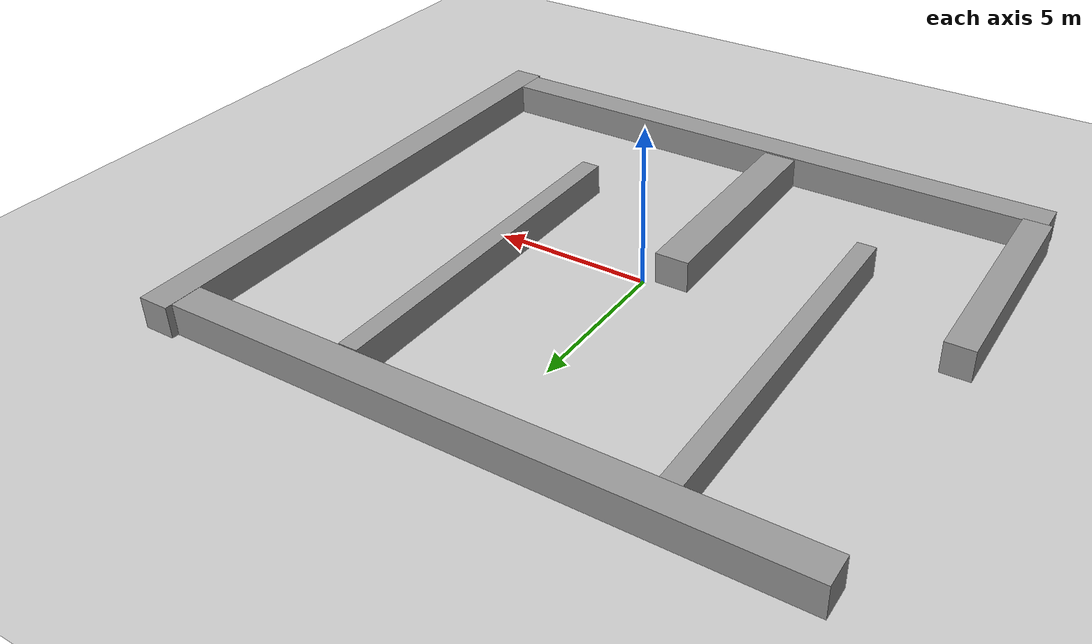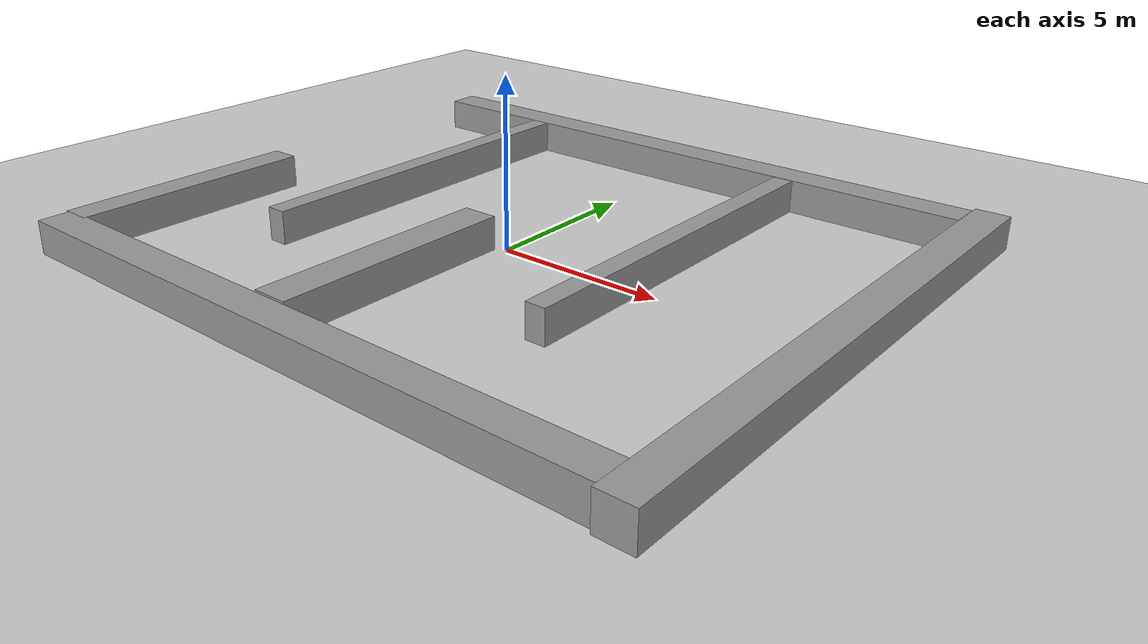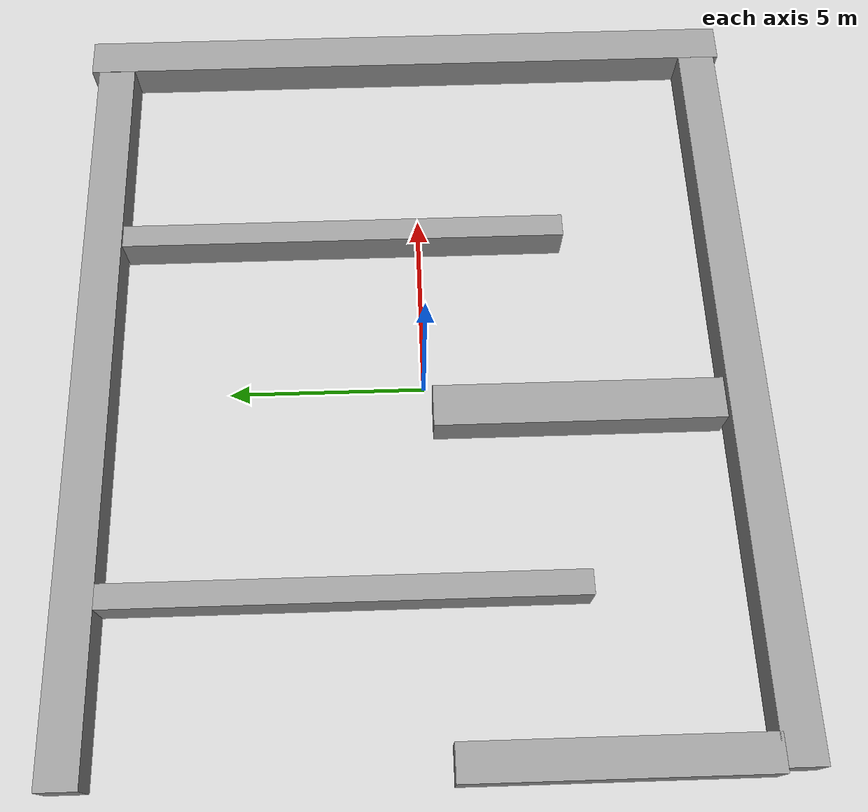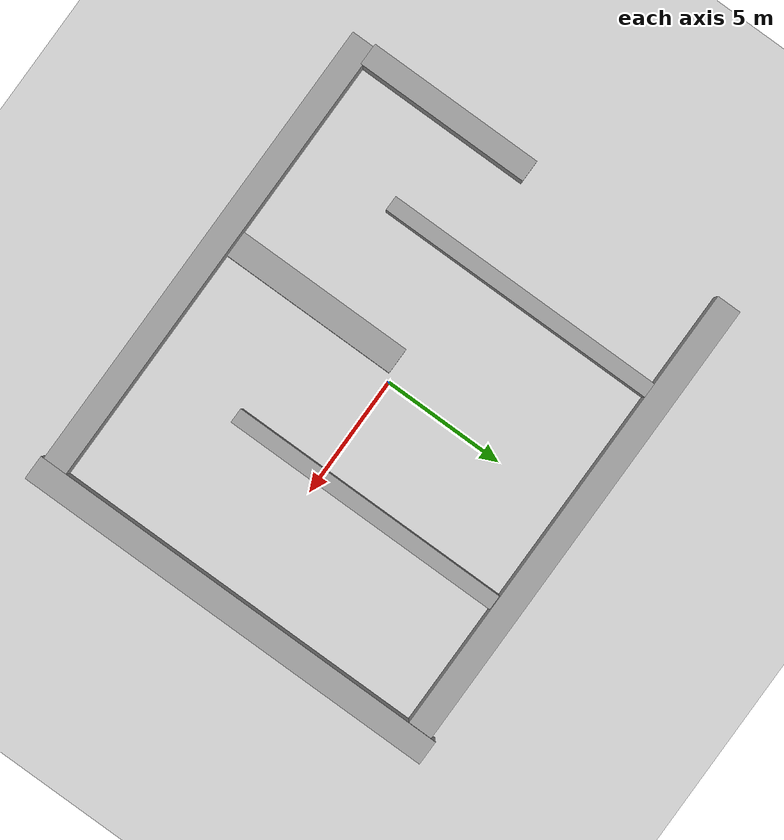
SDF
<sdf version="1.6">
 <world name="default">
  <light name="sun" type="directional">
   <pose>0 0 10 0 -0 0</pose>
   <diffuse>0.8 0.8 0.8 1</diffuse>
   <specular>0.1 0.1 0.1 1</specular>
   <attenuation>
    <range>1000</range>
    <constant>0.9</constant>
    <linear>0.01</linear>
    <quadratic>0.001</quadratic>
   </attenuation>
   <direction>-0.5 0.5 -1</direction>
  </light>
  <model name="ground_plane">
   <static>1</static>
   <link name="link">
    <collision name="collision">
     <geometry><plane><normal>0 0 1</normal><size>100 100</size></plane></geometry>
     <surface><friction><ode><mu>100</mu><mu2>50</mu2></ode></friction></surface>
    </collision>
    <visual name="visual">
     <cast_shadows>0</cast_shadows>
     <geometry><plane><normal>0 0 1</normal><size>100 100</size></plane></geometry>
     <material>
      <script><uri>file://media/materials/scripts/gazebo.material</uri><name>Gazebo/Grey</name></script>
     </material>
    </visual>
   </link>
  </model>
  <gravity>0 0 -9.8</gravity>
  <magnetic_field>6e-06 2.3e-05 -4.2e-05</magnetic_field>
  <atmosphere type="adiabatic"/>
  <physics name="default_physics" default="0" type="ode">
   <max_step_size>0.001</max_step_size>
   <real_time_factor>1</real_time_factor>
   <real_time_update_rate>1000</real_time_update_rate>
  </physics>
  <scene><ambient>0.4 0.4 0.4 1</ambient><background>0.7 0.7 0.7 1</background><shadows>1</shadows></scene>
  <spherical_coordinates>
   <surface_model>EARTH_WGS84</surface_model>
   <latitude_deg>0</latitude_deg>
   <longitude_deg>0</longitude_deg>
   <elevation>0</elevation>
   <heading_deg>0</heading_deg>
  </spherical_coordinates>
  <model name="wall_box_0_1">
   <link name="link">
    <pose>1.62881 -8.40741 3e-06 0 -0 0</pose>
    <inertial>
     <mass>19.2162</mass>
     <inertia><ixx>3.20271</ixx><ixy>0</ixy><ixz>0</ixz><iyy>592.925</iyy><iyz>0</iyz><izz>592.925</izz></inertia>
    </inertial>
    <visual name="visual">
     <geometry><box><size>19.2162 1 1</size></box></geometry>
     <material>
      <script><name>Gazebo/Grey</name><uri>file://media/materials/scripts/gazebo.material</uri></script>
      <ambient>0.3 0.3 0.3 1</ambient>
      <diffuse>0.7 0.7 0.7 1</diffuse>
      <specular>0.01 0.01 0.01 1</specular>
      <emissive>0 0 0 1</emissive>
     </material>
    </visual>
    <collision name="collision">
     <geometry><box><size>19.2162 1 1</size></box></geometry>
     <surface>
      <friction>
       <ode><mu>1</mu><mu2>1</mu2><fdir1>0 0 0</fdir1><slip1>0</slip1><slip2>0</slip2></ode>
       <torsional>
        <coefficient>1</coefficient>
        <patch_radius>0</patch_radius>
        <surface_radius>0</surface_radius>
        <use_patch_radius>1</use_patch_radius>
        <ode><slip>0</slip></ode>
       </torsional>
      </friction>
      <bounce><restitution_coefficient>0</restitution_coefficient><threshold>1e+06</threshold></bounce>
      <contact>
       <collide_without_contact>0</collide_without_contact>
       <collide_without_contact_bitmask>1</collide_without_contact_bitmask>
       <collide_bitmask>1</collide_bitmask>
       <ode>
        <soft_cfm>0</soft_cfm>
        <soft_erp>0.2</soft_erp>
        <kp>1e+13</kp>
        <kd>1</kd>
        <max_vel>0.01</max_vel>
        <min_depth>0</min_depth>
       </ode>
       <bullet>
        <split_impulse>1</split_impulse>
        <split_impulse_penetration_threshold>-0.01</split_impulse_penetration_threshold>
        <soft_cfm>0</soft_cfm>
        <soft_erp>0.2</soft_erp>
        <kp>1e+13</kp>
        <kd>1</kd>
       </bullet>
      </contact>
     </surface>
    </collision>
   </link>
   <link name="link_0">
    <pose>-7.64804 -4.34068 -3.2e-05 -1e-05 0 0</pose>
    <inertial>
     <mass>6.54361</mass>
     <inertia><ixx>29.6217</ixx><ixy>0</ixy><ixz>0</ixz><iyy>0.983213</iyy><iyz>0</iyz><izz>29.5143</izz></inertia>
    </inertial>
    <visual name="visual">
     <geometry><box><size>0.896119 7.30217 1</size></box></geometry>
     <material>
      <lighting>1</lighting>
      <script><uri>file://media/materials/scripts/gazebo.material</uri><name>Gazebo/Grey</name></script>
      <ambient>0.3 0.3 0.3 1</ambient>
      <diffuse>0.7 0.7 0.7 1</diffuse>
      <specular>0.01 0.01 0.01 1</specular>
      <emissive>0 0 0 1</emissive>
     </material>
    </visual>
    <collision name="collision">
     <geometry><box><size>0.896119 7.30217 1</size></box></geometry>
     <surface>
      <friction>
       <ode><mu>1</mu><mu2>1</mu2><fdir1>0 0 0</fdir1><slip1>0</slip1><slip2>0</slip2></ode>
       <torsional>
        <coefficient>1</coefficient>
        <patch_radius>0</patch_radius>
        <surface_radius>0</surface_radius>
        <use_patch_radius>1</use_patch_radius>
        <ode><slip>0</slip></ode>
       </torsional>
      </friction>
      <bounce><restitution_coefficient>0</restitution_coefficient><threshold>1e+06</threshold></bounce>
      <contact>
       <collide_without_contact>0</collide_without_contact>
       <collide_without_contact_bitmask>1</collide_without_contact_bitmask>
       <collide_bitmask>1</collide_bitmask>
       <ode>
        <soft_cfm>0</soft_cfm>
        <soft_erp>0.2</soft_erp>
        <kp>1e+13</kp>
        <kd>1</kd>
        <max_vel>0.01</max_vel>
        <min_depth>0</min_depth>
       </ode>
       <bullet>
        <split_impulse>1</split_impulse>
        <split_impulse_penetration_threshold>-0.01</split_impulse_penetration_threshold>
        <soft_cfm>0</soft_cfm>
        <soft_erp>0.2</soft_erp>
        <kp>1e+13</kp>
        <kd>1</kd>
       </bullet>
      </contact>
     </surface>
    </collision>
   </link>
   <link name="link_0_clone_2">
    <pose>0.798242 -4.17593 -6.8e-05 -2e-05 0 0</pose>
    <inertial>
     <mass>7.78347</mass>
     <inertia><ixx>35.2343</ixx><ixy>0</ixy><ixz>0</ixz><iyy>1.38558</iyy><iyz>0</iyz><izz>35.3226</izz></inertia>
    </inertial>
    <visual name="visual">
     <geometry><box><size>1.06591 7.30217 1</size></box></geometry>
     <material>
      <lighting>1</lighting>
      <script><uri>file://media/materials/scripts/gazebo.material</uri><name>Gazebo/Grey</name></script>
      <ambient>0.3 0.3 0.3 1</ambient>
      <diffuse>0.7 0.7 0.7 1</diffuse>
      <specular>0.01 0.01 0.01 1</specular>
      <emissive>0 0 0 1</emissive>
      <shader type="pixel"/>
     </material>
    </visual>
    <collision name="collision">
     <geometry><box><size>1.06591 7.30217 1</size></box></geometry>
     <surface>
      <friction>
       <ode><mu>1</mu><mu2>1</mu2><fdir1>0 0 0</fdir1><slip1>0</slip1><slip2>0</slip2></ode>
       <torsional>
        <coefficient>1</coefficient>
        <patch_radius>0</patch_radius>
        <surface_radius>0</surface_radius>
        <use_patch_radius>1</use_patch_radius>
        <ode><slip>0</slip></ode>
       </torsional>
      </friction>
      <bounce><restitution_coefficient>0</restitution_coefficient><threshold>1e+06</threshold></bounce>
      <contact>
       <collide_without_contact>0</collide_without_contact>
       <collide_without_contact_bitmask>1</collide_without_contact_bitmask>
       <collide_bitmask>1</collide_bitmask>
       <ode>
        <soft_cfm>0</soft_cfm>
        <soft_erp>0.2</soft_erp>
        <kp>1e+13</kp>
        <kd>1</kd>
        <max_vel>0.01</max_vel>
        <min_depth>0</min_depth>
       </ode>
       <bullet>
        <split_impulse>1</split_impulse>
        <split_impulse_penetration_threshold>-0.01</split_impulse_penetration_threshold>
        <soft_cfm>0</soft_cfm>
        <soft_erp>0.2</soft_erp>
        <kp>1e+13</kp>
        <kd>1</kd>
       </bullet>
      </contact>
     </surface>
    </collision>
   </link>
   <link name="link_1">
    <pose>11.7373 -0.140275 -7.3e-05 -1e-05 0 0</pose>
    <inertial>
     <mass>17.784</mass>
     <inertia><ixx>470.194</ixx><ixy>0</ixy><ixz>0</ixz><iyy>2.964</iyy><iyz>0</iyz><izz>470.194</izz></inertia>
    </inertial>
    <visual name="visual">
     <geometry><box><size>1 17.784 1</size></box></geometry>
     <material>
      <lighting>1</lighting>
      <script><uri>file://media/materials/scripts/gazebo.material</uri><name>Gazebo/Grey</name></script>
      <ambient>0.3 0.3 0.3 1</ambient>
      <diffuse>0.7 0.7 0.7 1</diffuse>
      <specular>0.01 0.01 0.01 1</specular>
      <emissive>0 0 0 1</emissive>
     </material>
    </visual>
    <collision name="collision">
     <geometry><box><size>1 17.784 1</size></box></geometry>
     <surface>
      <friction>
       <ode><mu>1</mu><mu2>1</mu2><fdir1>0 0 0</fdir1><slip1>0</slip1><slip2>0</slip2></ode>
       <torsional>
        <coefficient>1</coefficient>
        <patch_radius>0</patch_radius>
        <surface_radius>0</surface_radius>
        <use_patch_radius>1</use_patch_radius>
        <ode><slip>0</slip></ode>
       </torsional>
      </friction>
      <bounce><restitution_coefficient>0</restitution_coefficient><threshold>1e+06</threshold></bounce>
      <contact>
       <collide_without_contact>0</collide_without_contact>
       <collide_without_contact_bitmask>1</collide_without_contact_bitmask>
       <collide_bitmask>1</collide_bitmask>
       <ode>
        <soft_cfm>0</soft_cfm>
        <soft_erp>0.2</soft_erp>
        <kp>1e+13</kp>
        <kd>1</kd>
        <max_vel>0.01</max_vel>
        <min_depth>0</min_depth>
       </ode>
       <bullet>
        <split_impulse>1</split_impulse>
        <split_impulse_penetration_threshold>-0.01</split_impulse_penetration_threshold>
        <soft_cfm>0</soft_cfm>
        <soft_erp>0.2</soft_erp>
        <kp>1e+13</kp>
        <kd>1</kd>
       </bullet>
      </contact>
     </surface>
    </collision>
   </link>
   <link name="link_2">
    <pose>-3.73259 1.71366 -9.3e-05 -1e-05 0 0</pose>
    <inertial>
     <mass>7.12571</mass>
     <inertia><ixx>81.3871</ixx><ixy>0</ixy><ixz>0</ixz><iyy>0.81537</iyy><iyz>0</iyz><izz>81.0147</izz></inertia>
    </inertial>
    <visual name="visual">
     <geometry><box><size>0.610894 11.6644 1</size></box></geometry>
     <material>
      <lighting>1</lighting>
      <script><uri>file://media/materials/scripts/gazebo.material</uri><name>Gazebo/Grey</name></script>
      <ambient>0.3 0.3 0.3 1</ambient>
      <diffuse>0.7 0.7 0.7 1</diffuse>
      <specular>0.01 0.01 0.01 1</specular>
      <emissive>0 0 0 1</emissive>
     </material>
    </visual>
    <collision name="collision">
     <geometry><box><size>0.610894 11.6644 1</size></box></geometry>
     <surface>
      <friction>
       <ode><mu>1</mu><mu2>1</mu2><fdir1>0 0 0</fdir1><slip1>0</slip1><slip2>0</slip2></ode>
       <torsional>
        <coefficient>1</coefficient>
        <patch_radius>0</patch_radius>
        <surface_radius>0</surface_radius>
        <use_patch_radius>1</use_patch_radius>
        <ode><slip>0</slip></ode>
       </torsional>
      </friction>
      <bounce><restitution_coefficient>0</restitution_coefficient><threshold>1e+06</threshold></bounce>
      <contact>
       <collide_without_contact>0</collide_without_contact>
       <collide_without_contact_bitmask>1</collide_without_contact_bitmask>
       <collide_bitmask>1</collide_bitmask>
       <ode>
        <soft_cfm>0</soft_cfm>
        <soft_erp>0.2</soft_erp>
        <kp>1e+13</kp>
        <kd>1</kd>
        <max_vel>0.01</max_vel>
        <min_depth>0</min_depth>
       </ode>
       <bullet>
        <split_impulse>1</split_impulse>
        <split_impulse_penetration_threshold>-0.01</split_impulse_penetration_threshold>
        <soft_cfm>0</soft_cfm>
        <soft_erp>0.2</soft_erp>
        <kp>1e+13</kp>
        <kd>1</kd>
       </bullet>
      </contact>
     </surface>
    </collision>
   </link>
   <link name="link_2_clone_2">
    <pose>5.86168 1.68176 -0.000192 -2e-05 0 0</pose>
    <inertial>
     <mass>7.12579</mass>
     <inertia><ixx>81.388</ixx><ixy>0</ixy><ixz>0</ixz><iyy>0.815385</iyy><iyz>0</iyz><izz>81.0157</izz></inertia>
    </inertial>
    <visual name="visual">
     <geometry><box><size>0.610901 11.6644 1</size></box></geometry>
     <material>
      <lighting>1</lighting>
      <script><uri>file://media/materials/scripts/gazebo.material</uri><name>Gazebo/Grey</name></script>
      <ambient>0.3 0.3 0.3 1</ambient>
      <diffuse>0.7 0.7 0.7 1</diffuse>
      <specular>0.01 0.01 0.01 1</specular>
      <emissive>0 0 0 1</emissive>
      <shader type="vertex"><normal_map>__default__</normal_map></shader>
     </material>
    </visual>
    <collision name="collision">
     <geometry><box><size>0.610901 11.6644 1</size></box></geometry>
     <surface>
      <friction>
       <ode><mu>1</mu><mu2>1</mu2><fdir1>0 0 0</fdir1><slip1>0</slip1><slip2>0</slip2></ode>
       <torsional>
        <coefficient>1</coefficient>
        <patch_radius>0</patch_radius>
        <surface_radius>0</surface_radius>
        <use_patch_radius>1</use_patch_radius>
        <ode><slip>0</slip></ode>
       </torsional>
      </friction>
      <bounce><restitution_coefficient>0</restitution_coefficient><threshold>1e+06</threshold></bounce>
      <contact>
       <collide_without_contact>0</collide_without_contact>
       <collide_without_contact_bitmask>1</collide_without_contact_bitmask>
       <collide_bitmask>1</collide_bitmask>
       <ode>
        <soft_cfm>0</soft_cfm>
        <soft_erp>0.2</soft_erp>
        <kp>1e+13</kp>
        <kd>1</kd>
        <max_vel>0.01</max_vel>
        <min_depth>0</min_depth>
       </ode>
       <bullet>
        <split_impulse>1</split_impulse>
        <split_impulse_penetration_threshold>-0.01</split_impulse_penetration_threshold>
        <soft_cfm>0</soft_cfm>
        <soft_erp>0.2</soft_erp>
        <kp>1e+13</kp>
        <kd>1</kd>
       </bullet>
      </contact>
     </surface>
    </collision>
   </link>
   <link name="link_clone">
    <pose>1.62 8.0422 -0.000157 -1e-05 0 0</pose>
    <inertial>
     <mass>19.2162</mass>
     <inertia><ixx>3.20271</ixx><ixy>0</ixy><ixz>0</ixz><iyy>592.925</iyy><iyz>0</iyz><izz>592.925</izz></inertia>
    </inertial>
    <visual name="visual">
     <geometry><box><size>19.2162 1 1</size></box></geometry>
     <material>
      <script><name>Gazebo/Grey</name><uri>file://media/materials/scripts/gazebo.material</uri></script>
      <ambient>0.3 0.3 0.3 1</ambient>
      <diffuse>0.7 0.7 0.7 1</diffuse>
      <specular>0.01 0.01 0.01 1</specular>
      <emissive>0 0 0 1</emissive>
      <shader type="pixel"/>
     </material>
    </visual>
    <collision name="collision">
     <geometry><box><size>19.2162 1 1</size></box></geometry>
     <surface>
      <friction>
       <ode><mu>1</mu><mu2>1</mu2><fdir1>0 0 0</fdir1><slip1>0</slip1><slip2>0</slip2></ode>
       <torsional>
        <coefficient>1</coefficient>
        <patch_radius>0</patch_radius>
        <surface_radius>0</surface_radius>
        <use_patch_radius>1</use_patch_radius>
        <ode><slip>0</slip></ode>
       </torsional>
      </friction>
      <bounce><restitution_coefficient>0</restitution_coefficient><threshold>1e+06</threshold></bounce>
      <contact>
       <collide_without_contact>0</collide_without_contact>
       <collide_without_contact_bitmask>1</collide_without_contact_bitmask>
       <collide_bitmask>1</collide_bitmask>
       <ode>
        <soft_cfm>0</soft_cfm>
        <soft_erp>0.2</soft_erp>
        <kp>1e+13</kp>
        <kd>1</kd>
        <max_vel>0.01</max_vel>
        <min_depth>0</min_depth>
       </ode>
       <bullet>
        <split_impulse>1</split_impulse>
        <split_impulse_penetration_threshold>-0.01</split_impulse_penetration_threshold>
        <soft_cfm>0</soft_cfm>
        <soft_erp>0.2</soft_erp>
        <kp>1e+13</kp>
        <kd>1</kd>
       </bullet>
      </contact>
     </surface>
    </collision>
   </link>
   <static>0</static>
   <pose>-1.61382 0.326072 0.499997 0 -0 0</pose>
  </model>
 </world>
</sdf>
